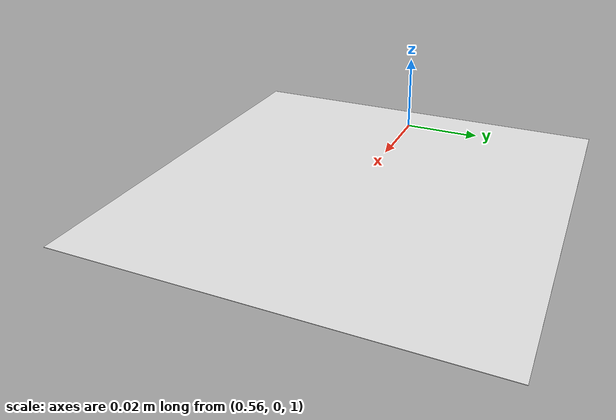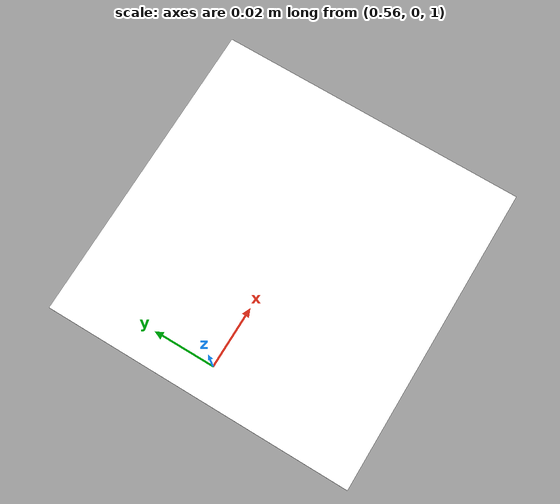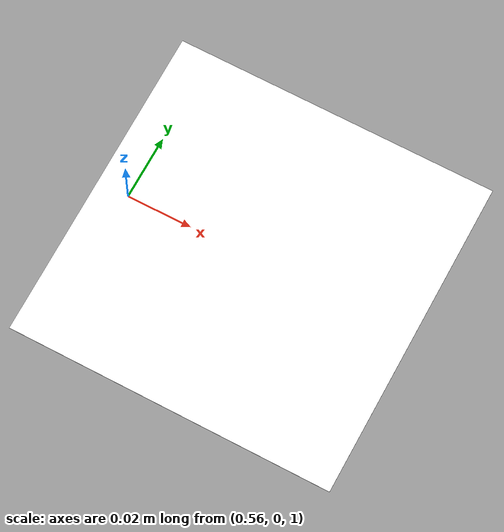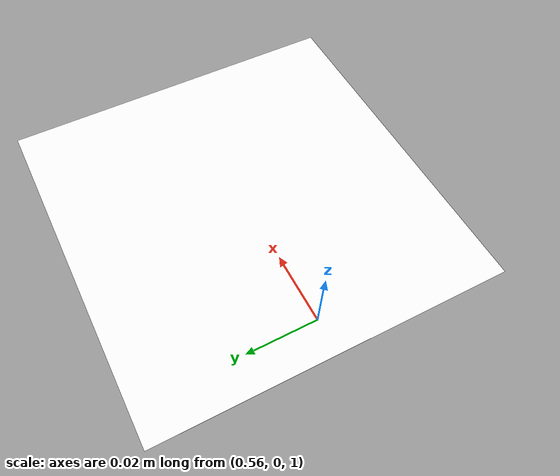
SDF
<sdf version='1.9'>
  <world name='aruco_world'>
    <gravity>0 0 0</gravity>
    <gui fullscreen='false'>
      <camera name='user_camera'>
        <pose>4.927360 -4.376610 3.740080 0.000000 0.275643 2.356190</pose>
        <view_controller>orbit</view_controller>
      </camera>
    </gui>
    <magnetic_field>6e-06 2.3e-05 -4.2e-05</magnetic_field>
    <atmosphere type='adiabatic'/>
    <physics type='ode'>
      <max_step_size>0.001</max_step_size>
      <real_time_factor>1</real_time_factor>
      <real_time_update_rate>1000</real_time_update_rate>
    </physics>
    <scene>
      <ambient>0.4 0.4 0.4 1</ambient>
      <background>0.7 0.7 0.7 1</background>
      <shadows>true</shadows>
    </scene>
    <model name='ground_plane'>
      <static>true</static>
      <link name='link'>
        <collision name='collision'>
          <geometry>
            <plane>
              <normal>0 0 1</normal>
              <size>100 100</size>
            </plane>
          </geometry>
          <surface>
            <friction>
              <ode>
                <mu>100</mu>
                <mu2>50</mu2>
              </ode>
            </friction>
            <bounce/>
            <contact/>
          </surface>
        </collision>
        <visual name='visual'>
          <cast_shadows>false</cast_shadows>
          <geometry>
            <plane>
              <normal>0 0 1</normal>
              <size>100 100</size>
            </plane>
          </geometry>
          <material>
            <ambient>0.3 0.3 0.3 1</ambient>
            <diffuse>0.7 0.7 0.7 1</diffuse>
            <specular>0.01 0.01 0.01 1</specular>
          </material>
        </visual>
        <pose>0 0 0 0 -0 0</pose>
        <inertial>
          <pose>0 0 0 0 -0 0</pose>
          <mass>1</mass>
          <inertia>
            <ixx>1</ixx>
            <ixy>0</ixy>
            <ixz>0</ixz>
            <iyy>1</iyy>
            <iyz>0</iyz>
            <izz>1</izz>
          </inertia>
        </inertial>
        <enable_wind>false</enable_wind>
      </link>
      <pose>0 0 0 0 -0 0</pose>
      <self_collide>false</self_collide>
    </model>
    <model name='arucotag'>
      <static>true</static>
      <pose>0.6 0 1 0 -0 0</pose>
      <link name='base'>
        <visual name='base_visual'>
          <geometry>
            <plane>
              <normal>0 0 1</normal>
              <size>0.1 0.1</size>
            </plane>
          </geometry>
          <material>
            <diffuse>1 1 1 1</diffuse>
            <specular>0.4 0.4 0.4 1</specular>
            <pbr>
              <metal>
                <albedo_map>model://arucotag/aruco-201.png</albedo_map>
              </metal>
            </pbr>
          </material>
        </visual>
        <pose>0 0 0 0 -0 0</pose>
        <inertial>
          <pose>0 0 0 0 -0 0</pose>
          <mass>1</mass>
          <inertia>
            <ixx>1</ixx>
            <ixy>0</ixy>
            <ixz>0</ixz>
            <iyy>1</iyy>
            <iyz>0</iyz>
            <izz>1</izz>
          </inertia>
        </inertial>
        <enable_wind>false</enable_wind>
      </link>
      <self_collide>false</self_collide>
    </model>
    <light name='sun' type='directional'>
      <pose>0 0 10 0 -0 0</pose>
      <cast_shadows>true</cast_shadows>
      <intensity>1</intensity>
      <direction>-0.5 0.1 -0.9</direction>
      <diffuse>0.8 0.8 0.8 1</diffuse>
      <specular>0.2 0.2 0.2 1</specular>
      <attenuation>
        <range>1000</range>
        <linear>0.01</linear>
        <constant>0.90000000000000002</constant>
        <quadratic>0.001</quadratic>
      </attenuation>
      <spot>
        <inner_angle>0</inner_angle>
        <outer_angle>0</outer_angle>
        <falloff>0</falloff>
      </spot>
    </light>
  </world>
</sdf>
